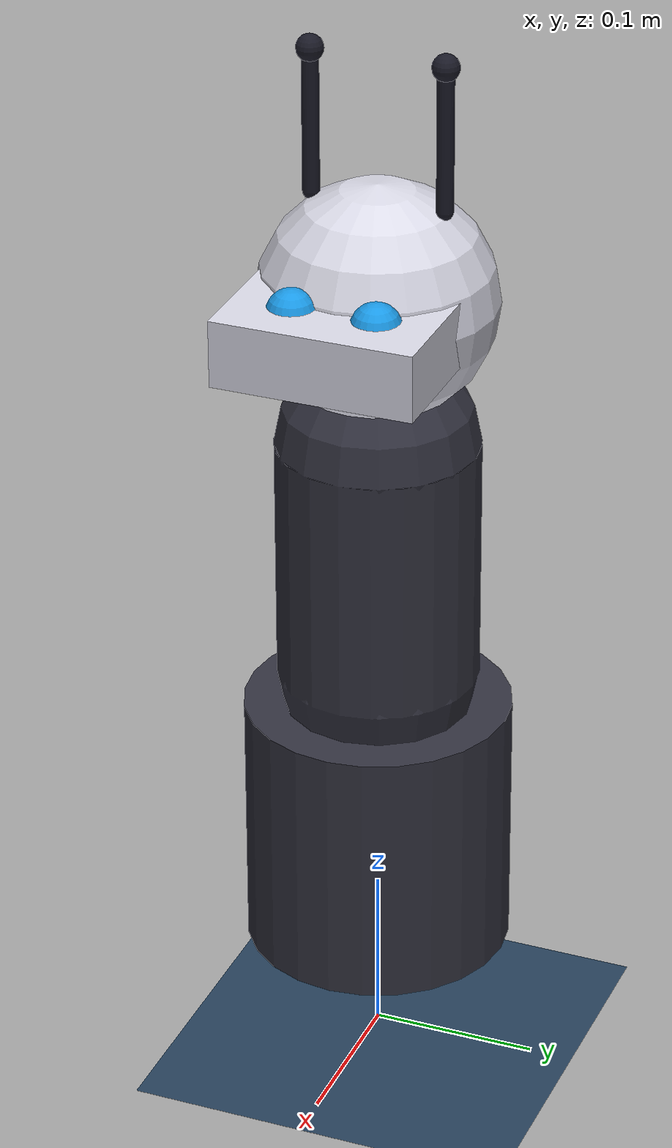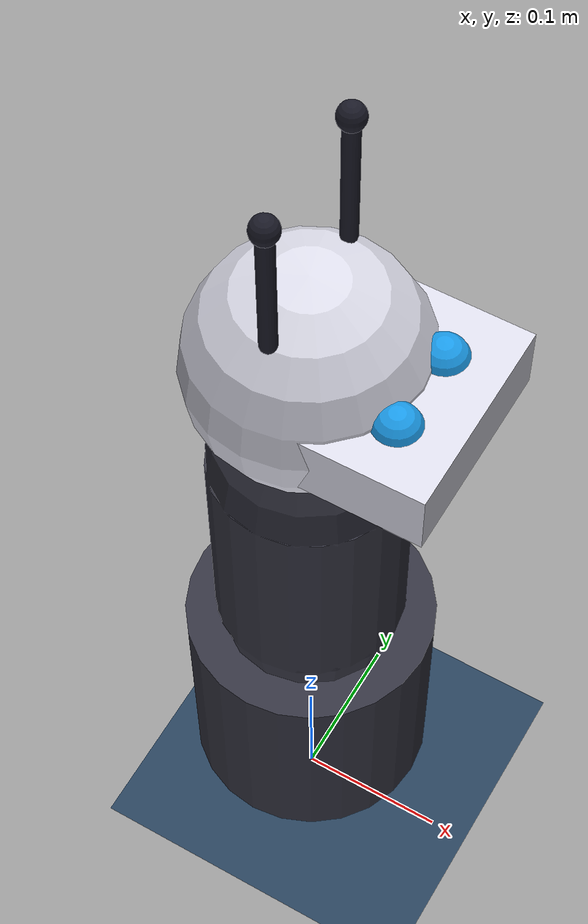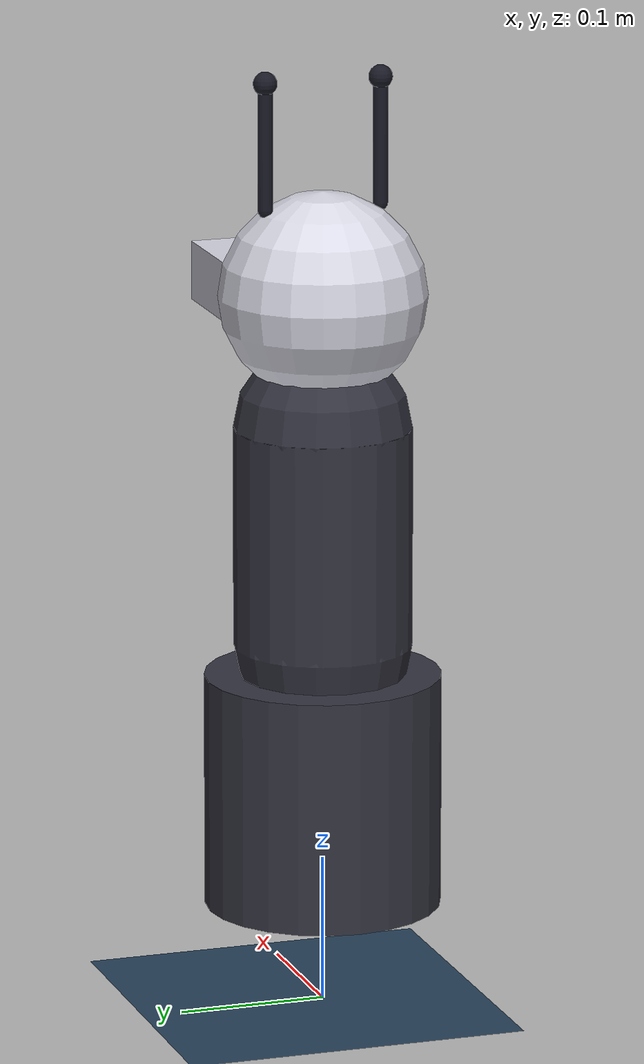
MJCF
<?xml version="1.0" encoding="UTF-8"?>
<mujoco model="reachy_mini">
    <!-- Compiler settings -->
    <compiler angle="degree" coordinate="local" inertiafromgeom="true"/>

    <!-- Simulation options -->
    <option timestep="0.002" iterations="50" tolerance="1e-10" gravity="0 0 -9.81">
        <flag warmstart="enable"/>
    </option>

    <!-- Visual defaults -->
    <visual>
        <rgba haze="0.15 0.25 0.35 1"/>
        <quality shadowsize="2048"/>
        <map znear="0.01" zfar="50"/>
    </visual>

    <!-- Default properties -->
    <default>
        <joint armature="0.1" damping="1" limited="true"/>
        <geom condim="3" friction="0.8 0.02 0.01" margin="0.001"/>
        <motor ctrllimited="true" ctrlrange="-50 50"/>
        <position kp="100" kv="10"/>

        <!-- Robot body material -->
        <default class="robot_body">
            <geom rgba="0.2 0.2 0.25 1"/>
        </default>

        <!-- Head material -->
        <default class="robot_head">
            <geom rgba="0.85 0.85 0.9 1"/>
        </default>

        <!-- Antenna material -->
        <default class="antenna">
            <geom rgba="0.1 0.1 0.15 1"/>
        </default>

        <!-- Eye material -->
        <default class="eyes">
            <geom rgba="0.1 0.6 0.9 1"/>
        </default>
    </default>

    <!-- Assets -->
    <asset>
        <!-- Ground texture -->
        <texture name="grid" type="2d" builtin="checker" rgb1="0.1 0.2 0.3" rgb2="0.2 0.3 0.4" width="512" height="512"/>
        <material name="grid_mat" texture="grid" texrepeat="5 5" reflectance="0.1"/>

        <!-- Robot materials -->
        <material name="body_mat" rgba="0.2 0.2 0.25 1" specular="0.5" shininess="0.5"/>
        <material name="head_mat" rgba="0.85 0.85 0.9 1" specular="0.8" shininess="0.8"/>
        <material name="antenna_mat" rgba="0.1 0.1 0.15 1" specular="0.3"/>
        <material name="eye_mat" rgba="0.1 0.6 0.9 1" emission="0.3"/>
    </asset>

    <!-- World body -->
    <worldbody>
        <!-- Lighting -->
        <light name="spotlight" pos="0 -1 2" dir="0 1 -1" diffuse="0.8 0.8 0.8" specular="0.3 0.3 0.3"/>
        <light name="ambient" pos="0 0 3" dir="0 0 -1" diffuse="0.4 0.4 0.4" specular="0.1 0.1 0.1"/>

        <!-- Ground plane -->
        <geom name="floor" type="plane" size="5 5 0.1" material="grid_mat"/>

        <!-- Robot base (fixed to world or mobile) -->
        <body name="base" pos="0 0 0.15">
            <inertial pos="0 0 0" mass="2.0" diaginertia="0.01 0.01 0.01"/>
            <geom name="base_cylinder" type="cylinder" size="0.08 0.08" class="robot_body" material="body_mat"/>

            <!-- Body rotation joint (continuous) -->
            <joint name="body_rotation" type="hinge" axis="0 0 1" range="-180 180" damping="2"/>

            <body name="torso" pos="0 0 0.1">
                <inertial pos="0 0 0.05" mass="1.0" diaginertia="0.005 0.005 0.003"/>
                <geom name="torso_geom" type="capsule" fromto="0 0 0 0 0 0.15" size="0.06" class="robot_body" material="body_mat"/>

                <!-- Head Z-lift (vertical translation) -->
                <body name="head_lift" pos="0 0 0.15">
                    <joint name="head_z" type="slide" axis="0 0 1" range="0 0.05" damping="1"/>

                    <!-- Head yaw joint -->
                    <body name="head_yaw_link" pos="0 0 0.02">
                        <inertial pos="0 0 0" mass="0.1" diaginertia="0.0001 0.0001 0.0001"/>
                        <joint name="head_yaw" type="hinge" axis="0 0 1" range="-60 60" damping="0.5"/>

                        <!-- Head pitch joint -->
                        <body name="head_pitch_link" pos="0 0 0.02">
                            <inertial pos="0 0 0" mass="0.1" diaginertia="0.0001 0.0001 0.0001"/>
                            <joint name="head_pitch" type="hinge" axis="0 1 0" range="-45 35" damping="0.5"/>

                            <!-- Head roll joint -->
                            <body name="head_roll_link" pos="0 0 0">
                                <inertial pos="0 0 0.03" mass="0.3" diaginertia="0.001 0.001 0.0008"/>
                                <joint name="head_roll" type="hinge" axis="1 0 0" range="-35 35" damping="0.5"/>

                                <!-- Head geometry -->
                                <body name="head" pos="0 0 0.05">
                                    <inertial pos="0 0 0" mass="0.5" diaginertia="0.002 0.002 0.002"/>

                                    <!-- Main head sphere -->
                                    <geom name="head_main" type="sphere" size="0.07" pos="0 0 0" class="robot_head" material="head_mat"/>

                                    <!-- Face plate -->
                                    <geom name="face_plate" type="box" size="0.05 0.06 0.02" pos="0.05 0 0" class="robot_head" material="head_mat"/>

                                    <!-- Left eye -->
                                    <geom name="left_eye" type="sphere" size="0.015" pos="0.065 0.025 0.015" class="eyes" material="eye_mat"/>

                                    <!-- Right eye -->
                                    <geom name="right_eye" type="sphere" size="0.015" pos="0.065 -0.025 0.015" class="eyes" material="eye_mat"/>

                                    <!-- Camera (visual only, sensor defined separately) -->
                                    <geom name="camera_lens" type="cylinder" size="0.008 0.005" pos="0.07 0 -0.01" euler="0 90 0" rgba="0.1 0.1 0.1 1"/>

                                    <!-- Camera sensor -->
                                    <camera name="head_camera" pos="0.08 0 0" euler="0 90 0" fovy="90"/>

                                    <!-- IMU site for sensors -->
                                    <site name="head_imu_site" pos="0 0 0" size="0.01"/>

                                    <!-- Left Antenna -->
                                    <body name="antenna_left_base" pos="0 0.04 0.06">
                                        <inertial pos="0 0 0.03" mass="0.05" diaginertia="0.00001 0.00001 0.00001"/>
                                        <joint name="antenna_left" type="hinge" axis="0 1 0" range="-150 150" damping="0.1"/>
                                        <geom name="antenna_left_geom" type="capsule" fromto="0 0 0 0 0 0.08" size="0.005" class="antenna" material="antenna_mat"/>
                                        <geom name="antenna_left_tip" type="sphere" size="0.008" pos="0 0 0.085" class="antenna" material="antenna_mat"/>
                                    </body>

                                    <!-- Right Antenna -->
                                    <body name="antenna_right_base" pos="0 -0.04 0.06">
                                        <inertial pos="0 0 0.03" mass="0.05" diaginertia="0.00001 0.00001 0.00001"/>
                                        <joint name="antenna_right" type="hinge" axis="0 1 0" range="-150 150" damping="0.1"/>
                                        <geom name="antenna_right_geom" type="capsule" fromto="0 0 0 0 0 0.08" size="0.005" class="antenna" material="antenna_mat"/>
                                        <geom name="antenna_right_tip" type="sphere" size="0.008" pos="0 0 0.085" class="antenna" material="antenna_mat"/>
                                    </body>
                                </body>
                            </body>
                        </body>
                    </body>
                </body>
            </body>
        </body>
    </worldbody>

    <!-- Actuators -->
    <actuator>
        <!-- Position-controlled actuators for each joint -->
        <position name="body_rotation_actuator" joint="body_rotation" kp="200" kv="20" ctrlrange="-180 180"/>
        <position name="head_z_actuator" joint="head_z" kp="500" kv="50" ctrlrange="0 0.05"/>
        <position name="head_yaw_actuator" joint="head_yaw" kp="100" kv="10" ctrlrange="-60 60"/>
        <position name="head_pitch_actuator" joint="head_pitch" kp="100" kv="10" ctrlrange="-45 35"/>
        <position name="head_roll_actuator" joint="head_roll" kp="100" kv="10" ctrlrange="-35 35"/>
        <position name="antenna_left_actuator" joint="antenna_left" kp="50" kv="5" ctrlrange="-150 150"/>
        <position name="antenna_right_actuator" joint="antenna_right" kp="50" kv="5" ctrlrange="-150 150"/>
    </actuator>

    <!-- Sensors -->
    <sensor>
        <!-- Joint position sensors -->
        <jointpos name="body_rotation_pos" joint="body_rotation"/>
        <jointpos name="head_z_pos" joint="head_z"/>
        <jointpos name="head_yaw_pos" joint="head_yaw"/>
        <jointpos name="head_pitch_pos" joint="head_pitch"/>
        <jointpos name="head_roll_pos" joint="head_roll"/>
        <jointpos name="antenna_left_pos" joint="antenna_left"/>
        <jointpos name="antenna_right_pos" joint="antenna_right"/>

        <!-- Joint velocity sensors -->
        <jointvel name="body_rotation_vel" joint="body_rotation"/>
        <jointvel name="head_z_vel" joint="head_z"/>
        <jointvel name="head_yaw_vel" joint="head_yaw"/>
        <jointvel name="head_pitch_vel" joint="head_pitch"/>
        <jointvel name="head_roll_vel" joint="head_roll"/>
        <jointvel name="antenna_left_vel" joint="antenna_left"/>
        <jointvel name="antenna_right_vel" joint="antenna_right"/>

        <!-- IMU sensors (attached to head) -->
        <accelerometer name="head_accel" site="head_imu_site"/>
        <gyro name="head_gyro" site="head_imu_site"/>

        <!-- Camera frame sensor (for synchronization) -->
        <framepos name="camera_pos" objtype="camera" objname="head_camera"/>
        <framequat name="camera_quat" objtype="camera" objname="head_camera"/>
    </sensor>

    <!-- Keyframes for common poses -->
    <keyframe>
        <key name="home" qpos="0 0 0 0 0 0 0"/>
        <key name="look_up" qpos="0 0 0 -30 0 0 0"/>
        <key name="look_down" qpos="0 0 0 25 0 0 0"/>
        <key name="look_left" qpos="0 0 45 0 0 0 0"/>
        <key name="look_right" qpos="0 0 -45 0 0 0 0"/>
        <key name="antennas_up" qpos="0 0 0 0 0 90 90"/>
        <key name="antennas_down" qpos="0 0 0 0 0 -90 -90"/>
    </keyframe>
</mujoco>
